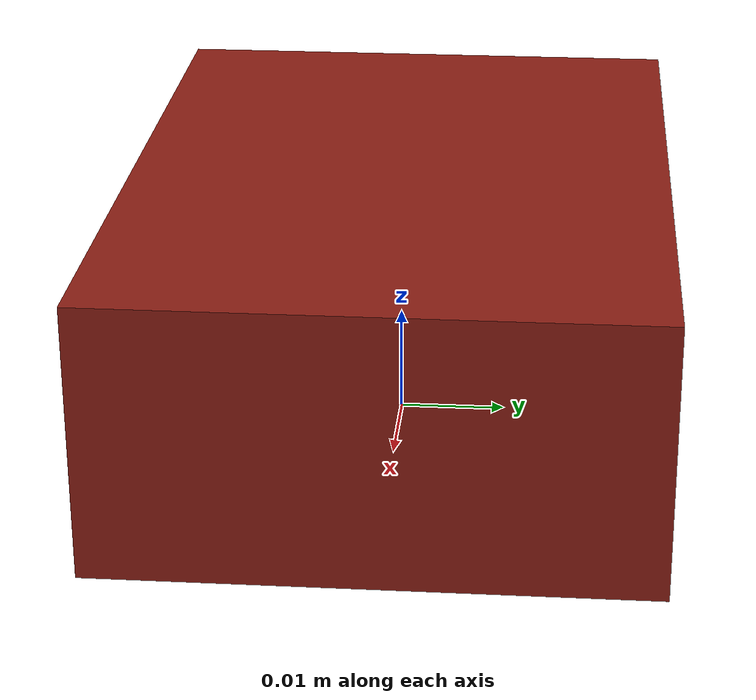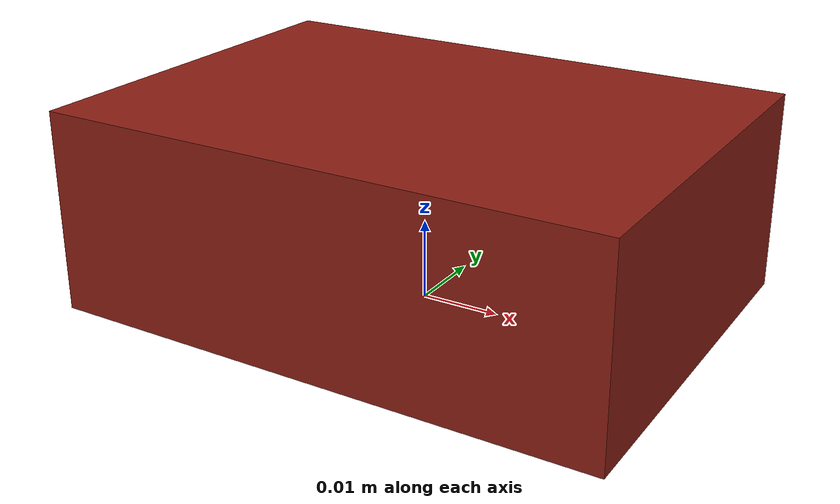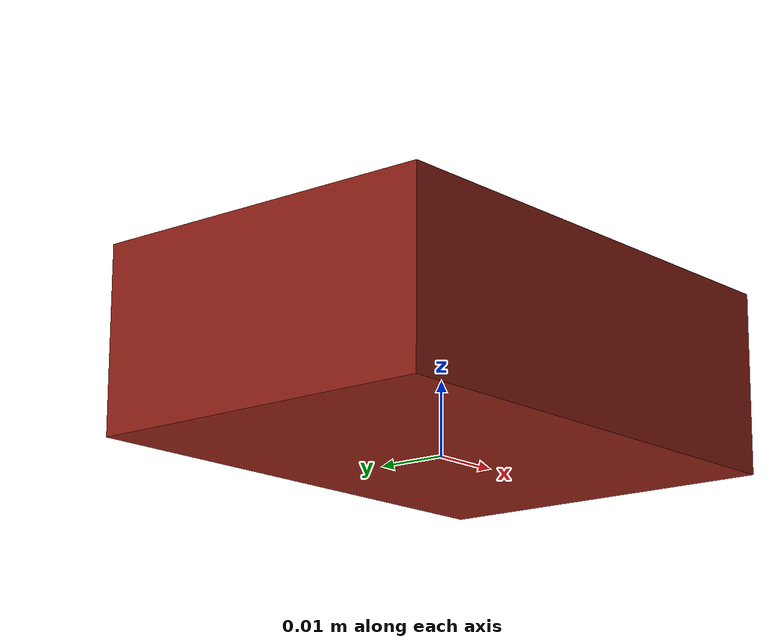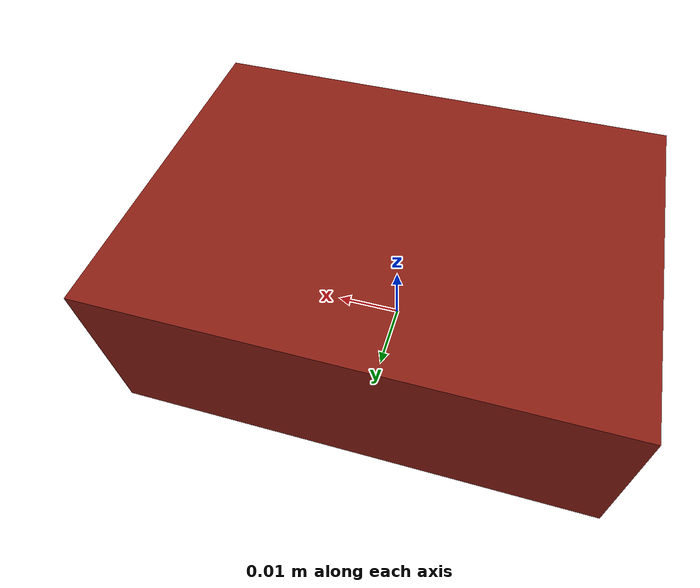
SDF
<?xml version="1.0" ?>
<sdf version="1.8">
  <model name="product_carton">
    <link name="link">
      <inertial>
        <pose>0 0 0.0125 0 0 0</pose>
        <mass>0.08</mass>
        <inertia><ixx>2.1e-5</ixx><iyy>3.7e-5</iyy><izz>4.9e-5</izz><ixy>0</ixy><ixz>0</ixz><iyz>0</iyz></inertia>
      </inertial>
      <visual name="visual">
        <pose>0 0 0.0125 0 0 0</pose>
        <geometry><box><size>0.07 0.05 0.025</size></box></geometry>
        <material><ambient>0.55 0.12 0.08 1</ambient><diffuse>0.55 0.12 0.08 1</diffuse><specular>0.3 0.3 0.3 1</specular></material>
        <plugin filename="ignition-gazebo-label-system" name="ignition::gazebo::systems::Label">
          <label>2</label>
        </plugin>
      </visual>
      <collision name="collision">
        <pose>0 0 0.0125 0 0 0</pose>
        <geometry><box><size>0.07 0.05 0.025</size></box></geometry>
        <surface><friction><ode><mu>0.8</mu><mu2>0.8</mu2></ode></friction>
          <contact><ode><kp>1e6</kp><kd>100</kd><min_depth>0.0005</min_depth></ode></contact></surface>
      </collision>
    </link>
  </model>
</sdf>
